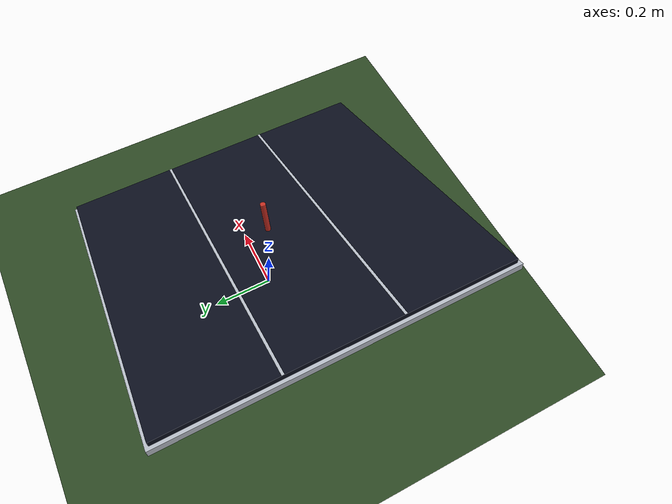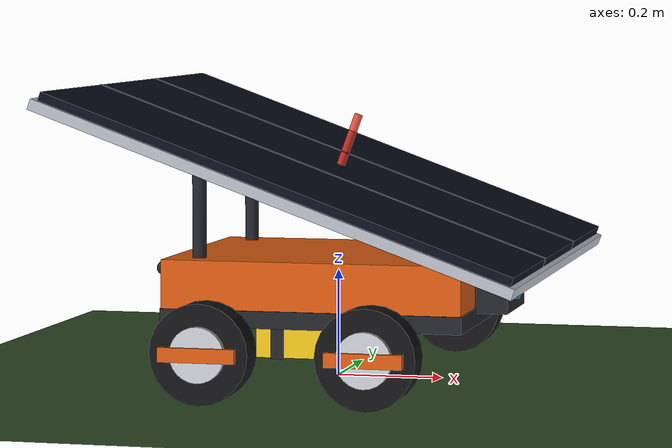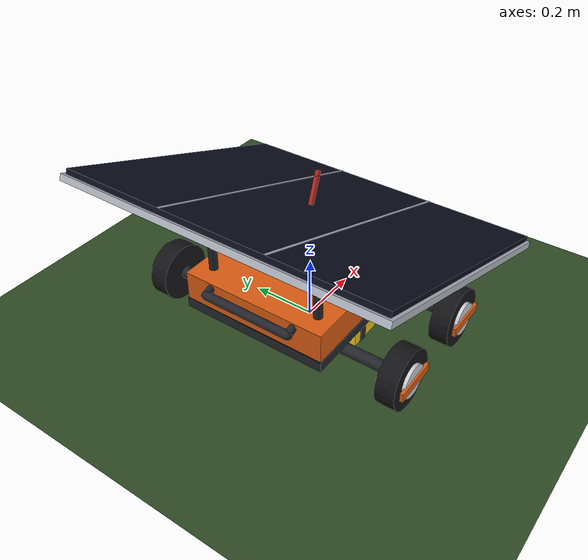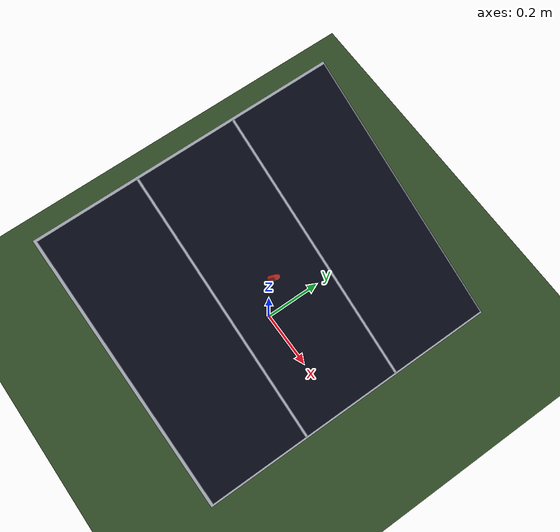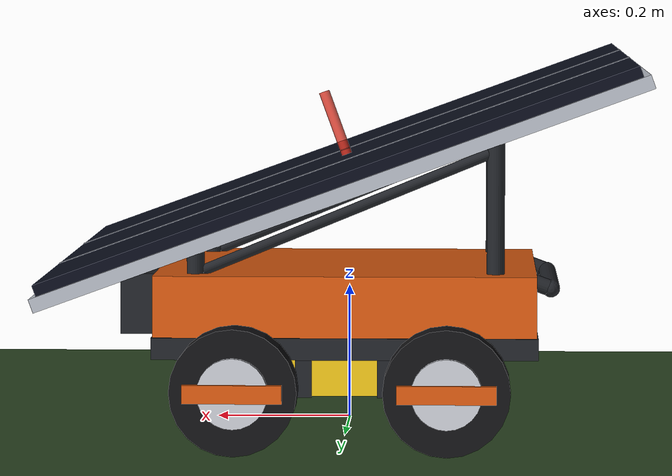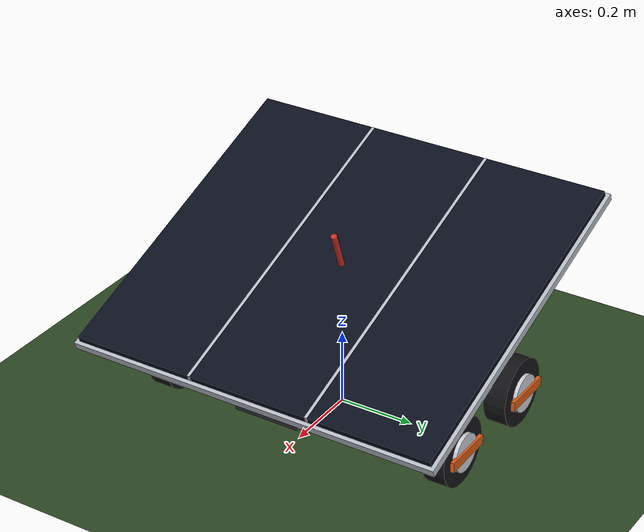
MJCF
<mujoco model="solar_rover">

  <compiler angle="radian" coordinate="local" inertiafromgeom="auto" meshdir="." autolimits="true"/>

  <option timestep="0.001" integrator="implicitfast" cone="elliptic" impratio="1"
          gravity="0 0 -9.81" density="1.2" viscosity="0"/>

  <size njmax="500" nconmax="200"/>

  <statistic center="0 0 0.20" extent="1.3" meansize="0.05"/>

  <visual>
    <headlight ambient="0.38 0.38 0.42" diffuse="0.45 0.45 0.45" specular="0.15 0.15 0.15"/>
    <map znear="0.01" zfar="60" shadowclip="3" shadowscale="1.2"/>
    <quality shadowsize="4096" offsamples="8"/>
    <global azimuth="130" elevation="-18" offwidth="1920" offheight="1080"/>
  </visual>

  <asset>
    <texture name="sky" type="skybox" builtin="gradient"
             rgb1="0.30 0.47 0.72" rgb2="0.82 0.89 0.96" width="512" height="3072"/>
    <texture name="grass_tex" type="2d" builtin="checker"
             rgb1="0.165 0.262 0.129" rgb2="0.205 0.325 0.163"
             mark="edge" markrgb="0.13 0.21 0.11" width="512" height="512"/>

    <material name="grass"     texture="grass_tex" texrepeat="1 1" texuniform="true"
              specular="0.05" shininess="0.05" reflectance="0.0"/>
    <material name="pv_glass"  rgba="0.042 0.055 0.115 1" specular="0.95" shininess="0.92" reflectance="0.30"/>
    <material name="pv_frame"  rgba="0.72 0.74 0.78 1"    specular="0.60" shininess="0.55" reflectance="0.15"/>
    <material name="body"      rgba="0.87 0.36 0.07 1"    specular="0.35" shininess="0.35" reflectance="0.05"/>
    <material name="body_dark" rgba="0.135 0.145 0.165 1" specular="0.35" shininess="0.35"/>
    <material name="tyre"      rgba="0.075 0.075 0.085 1" specular="0.12" shininess="0.10"/>
    <material name="hub"       rgba="0.80 0.81 0.84 1"    specular="0.75" shininess="0.65" reflectance="0.10"/>
    <material name="battery"   rgba="0.95 0.78 0.10 1"    specular="0.30" shininess="0.30"/>
    <material name="lens"      rgba="0.16 0.68 0.74 1"    specular="0.95" shininess="0.95"/>
    <material name="site_hi"   rgba="0.95 0.25 0.18 0.85"/>
    <material name="site_lo"   rgba="0.20 0.85 0.45 0.85"/>
  </asset>

  <default>
    <geom solref="0.02 1" solimp="0.90 0.95 0.001" condim="3"/>

    <default class="wheel">
      <geom type="cylinder" material="tyre" friction="0.65 0.005 0.0001"
            condim="3" priority="1" contype="1" conaffinity="1" group="0"/>
      <joint type="hinge" axis="0 1 0" armature="0.01" damping="0.02" frictionloss="0.60"/>
    </default>

    <default class="visual">
      <geom contype="0" conaffinity="0" group="2" mass="0"/>
    </default>
  </default>

  <worldbody>

    <light name="sun" directional="true" castshadow="true"
           pos="2.5 -2.0 4.0" dir="-0.45 0.38 -0.81"
           diffuse="0.85 0.83 0.78" specular="0.25 0.25 0.25"/>
    <light name="fill" directional="true" castshadow="false"
           pos="-3 3 2.5" dir="0.5 -0.5 -0.7"
           diffuse="0.20 0.22 0.26" specular="0 0 0"/>

    <geom name="ground" type="plane" size="10 7 0.1" material="grass"
          friction="0.65 0.005 0.0001" condim="3"/>

    <!-- =====================  ROVER  ===================== -->
    <!-- Chassis centre at z = 0.175: wheel axles are at z = 0.090 (= r), and the
         0.12 m deep box then floats 0.115 m clear of the ground. -->
    <body name="chassis" pos="0 0 0.175">
      <!-- 2. free joint -->
      <freejoint name="root"/>
      <!-- shell: 0.56 x 0.46 x 0.12 m, 12 kg of ali box + 4 gearmotors +
           electronics lumped into the one collidable geom. -->
      <geom name="shell" type="box" size="0.28 0.23 0.06" material="body" mass="12.0"
            friction="0.5 0.005 0.0001"/>
      <!-- dark sill band, slightly proud of the shell so it cannot z-fight -->
      <geom class="visual" name="sill" type="box" size="0.282 0.232 0.016" pos="0 0 -0.046"
            material="body_dark"/>
      <!-- forward sensor pod + lens: gives the still frame a "front" and reads
           as a purposeful machine rather than a crate on wheels -->
      <geom class="visual" name="pod" type="box" size="0.038 0.090 0.045" pos="0.302 0 0.005"
            material="body_dark"/>
      <geom class="visual" name="lens" type="cylinder" fromto="0.335 0 0.005 0.346 0 0.005"
            size="0.026" material="lens"/>
      <!-- rear carry handle / bump hoop -->
      <geom class="visual" name="handle" type="capsule"
            fromto="-0.302 -0.14 0.035 -0.302 0.14 0.035" size="0.013" material="body_dark"/>
      <geom class="visual" name="handle_l" type="capsule"
            fromto="-0.302 0.14 0.035 -0.275 0.14 0.045" size="0.012" material="body_dark"/>
      <geom class="visual" name="handle_r" type="capsule"
            fromto="-0.302 -0.14 0.035 -0.275 -0.14 0.045" size="0.012" material="body_dark"/>

      <geom class="visual" name="axle_fl" type="capsule"
            fromto="0.15 0.18 -0.085 0.15 0.37 -0.085" size="0.018" material="body_dark"/>
      <geom class="visual" name="axle_fr" type="capsule"
            fromto="0.15 -0.18 -0.085 0.15 -0.37 -0.085" size="0.018" material="body_dark"/>
      <geom class="visual" name="axle_rl" type="capsule"
            fromto="-0.15 0.18 -0.085 -0.15 0.37 -0.085" size="0.018" material="body_dark"/>
      <geom class="visual" name="axle_rr" type="capsule"
            fromto="-0.15 -0.18 -0.085 -0.15 -0.37 -0.085" size="0.018" material="body_dark"/>

      <geom class="visual" name="post_fl" type="cylinder" fromto="0.22 0.18 0.058 0.22 0.18 0.113" size="0.013" material="body_dark"/>
      <geom class="visual" name="post_fr" type="cylinder" fromto="0.22 -0.18 0.058 0.22 -0.18 0.113" size="0.013" material="body_dark"/>
      <geom class="visual" name="post_rl" type="cylinder" fromto="-0.22 0.18 0.058 -0.22 0.18 0.273" size="0.013" material="body_dark"/>
      <geom class="visual" name="post_rr" type="cylinder" fromto="-0.22 -0.18 0.058 -0.22 -0.18 0.273" size="0.013" material="body_dark"/>
      <geom class="visual" name="brace_l" type="capsule" fromto="-0.22 0.18 0.240 0.205 0.18 0.066" size="0.008" material="body_dark"/>
      <geom class="visual" name="brace_r" type="capsule" fromto="-0.22 -0.18 0.240 0.205 -0.18 0.066" size="0.008" material="body_dark"/>
      <!-- anodised frame: 0.91 x 1.01 m outer -->
      <geom name="pv_frame" type="box" size="0.455 0.505 0.010" pos="-0.0045 0 0.200"
            quat="0.984808 0 0.173648 0"
            material="pv_frame" mass="2.5" friction="0.5 0.005 0.0001"/>
      <!-- laminate: 0.89 x 0.99 m of dark blue-black cell glass = the 0.90 m^2 -->
      <geom name="pv_glass" type="box" size="0.445 0.495 0.008" pos="0.001656 0 0.216915"
            quat="0.984808 0 0.173648 0"
            material="pv_glass" mass="6.5" friction="0.5 0.005 0.0001"/>
      <!-- two busbar strips so the panel reads as cells, not a black slab -->
      <geom class="visual" name="busbar_a" type="box" size="0.445 0.004 0.0085" pos="0.001827 0.165 0.217384"
            quat="0.984808 0 0.173648 0" material="pv_frame"/>
      <geom class="visual" name="busbar_b" type="box" size="0.445 0.004 0.0085" pos="0.001827 -0.165 0.217384"
            quat="0.984808 0 0.173648 0" material="pv_frame"/>

      <!-- 7. SITES -->
      <site name="panel_normal" type="cylinder" pos="0.021494 0 0.271417" zaxis="0.342020 0 0.939693"
            size="0.008 0.05" material="site_hi" group="1"/>
      <!-- battery_mount: on the UNDERSIDE face of the pack, z-axis pointing
           DOWN at the dock. Frame is (x fwd, y right, z down) - a dock driving
           under the rover sees +Z coming at it. -->
      <site name="battery_mount" pos="0 0 -0.115" zaxis="0 0 -1" type="box"
            size="0.045 0.085 0.006" material="site_lo" group="1"/>
      <!-- IMU for the body-frame sensors below -->
      <site name="imu" pos="0 0 0" size="0.012" group="4"/>

      <body name="wheel_fl_body" pos="0.15 0.40 -0.085">
        <joint class="wheel" name="wheel_fl"/>
        <geom class="wheel" name="tyre_fl" fromto="0 -0.03 0 0 0.03 0" size="0.09" mass="1.1"/>
        <geom class="visual" name="hub_fl" type="cylinder" fromto="0 0.030 0 0 0.040 0" size="0.050" material="hub"/>
        <geom class="visual" name="spoke_fl" type="box" size="0.070 0.005 0.013" pos="0 0.041 0" material="body"/>
      </body>

      <body name="wheel_fr_body" pos="0.15 -0.40 -0.085">
        <joint class="wheel" name="wheel_fr"/>
        <geom class="wheel" name="tyre_fr" fromto="0 -0.03 0 0 0.03 0" size="0.09" mass="1.1"/>
        <geom class="visual" name="hub_fr" type="cylinder" fromto="0 -0.030 0 0 -0.040 0" size="0.050" material="hub"/>
        <geom class="visual" name="spoke_fr" type="box" size="0.070 0.005 0.013" pos="0 -0.041 0" material="body"/>
      </body>

      <body name="wheel_rl_body" pos="-0.15 0.40 -0.085">
        <joint class="wheel" name="wheel_rl"/>
        <geom class="wheel" name="tyre_rl" fromto="0 -0.03 0 0 0.03 0" size="0.09" mass="1.1"/>
        <geom class="visual" name="hub_rl" type="cylinder" fromto="0 0.030 0 0 0.040 0" size="0.050" material="hub"/>
        <geom class="visual" name="spoke_rl" type="box" size="0.070 0.005 0.013" pos="0 0.041 0" material="body"/>
      </body>

      <body name="wheel_rr_body" pos="-0.15 -0.40 -0.085">
        <joint class="wheel" name="wheel_rr"/>
        <geom class="wheel" name="tyre_rr" fromto="0 -0.03 0 0 0.03 0" size="0.09" mass="1.1"/>
        <geom class="visual" name="hub_rr" type="cylinder" fromto="0 -0.030 0 0 -0.040 0" size="0.050" material="hub"/>
        <geom class="visual" name="spoke_rr" type="box" size="0.070 0.005 0.013" pos="0 -0.041 0" material="body"/>
      </body>
    </body>

    <body name="pack" pos="0 0 0.0875">
      <freejoint name="pack_free"/>
      <geom name="battery" type="box" size="0.10 0.225 0.0275" pos="0 0 0"
            material="battery" mass="4.0" friction="0.4 0.005 0.0001"/>
      <geom class="visual" name="batt_strap_l" type="box" size="0.012 0.227 0.030" pos="0.06 0 0" material="body_dark"/>
      <geom class="visual" name="batt_strap_r" type="box" size="0.012 0.227 0.030" pos="-0.06 0 0" material="body_dark"/>
    </body>

    <!-- 8. CAMERAS - all aimed at the chassis body so they stay framed even if
         you nudge the rover's start pose. -->
    <camera name="hero" pos="1.55 -1.45 0.92" mode="targetbody" target="chassis" fovy="42"/>
    <camera name="side" pos="0.0 -2.45 0.215" mode="targetbody" target="chassis" fovy="38"/>
    <!-- low front three-quarter, "hero rising" angle for the video opener -->
    <camera name="hero_low" pos="1.75 -0.95 0.28" mode="targetbody" target="chassis" fovy="45"/>
    <!-- plan view for panel-aim / lane-coverage overlays -->
    <camera name="top" pos="0.01 -0.30 2.60" mode="targetbody" target="chassis" fovy="45"/>
  </worldbody>

  <contact>
    <exclude name="pack_shell" body1="chassis" body2="pack"/>
  </contact>

  <equality>
    <weld name="pack_latch" body1="chassis" body2="pack"
          relpose="0 0 -0.0875 1 0 0 0" active="true"/>
  </equality>

  <actuator>
    <velocity name="mot_fl" joint="wheel_fl" kv="18" ctrlrange="-3.1416 3.1416" forcerange="-2.4 2.4"/>
    <velocity name="mot_fr" joint="wheel_fr" kv="18" ctrlrange="-3.1416 3.1416" forcerange="-2.4 2.4"/>
    <velocity name="mot_rl" joint="wheel_rl" kv="18" ctrlrange="-3.1416 3.1416" forcerange="-2.4 2.4"/>
    <velocity name="mot_rr" joint="wheel_rr" kv="18" ctrlrange="-3.1416 3.1416" forcerange="-2.4 2.4"/>
  </actuator>

  <sensor>
    <framezaxis name="panel_normal_world" objtype="site" objname="panel_normal"/>
    <framepos    name="panel_pos_world"   objtype="site" objname="panel_normal"/>
    <velocimeter name="chassis_vel"  site="imu"/>
    <gyro        name="chassis_gyro" site="imu"/>
  </sensor>

  <keyframe>
    <!-- parked flat at the origin, wheels at rest, pack latched under the deck.
         Layout: chassis free [0:7] | wheels [7:11] | pack free [11:18]. -->
    <key name="home"
         qpos="0 0 0.175 1 0 0 0  0 0 0 0  0 0 0.0875 1 0 0 0"
         ctrl="0 0 0 0"/>
  </keyframe>
</mujoco>
